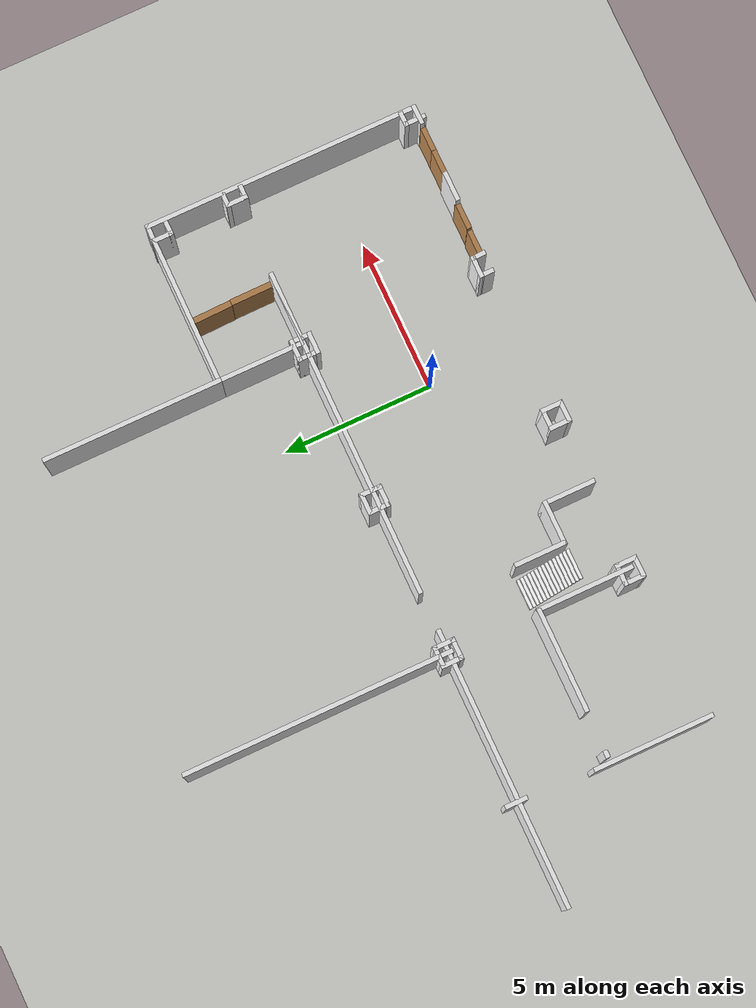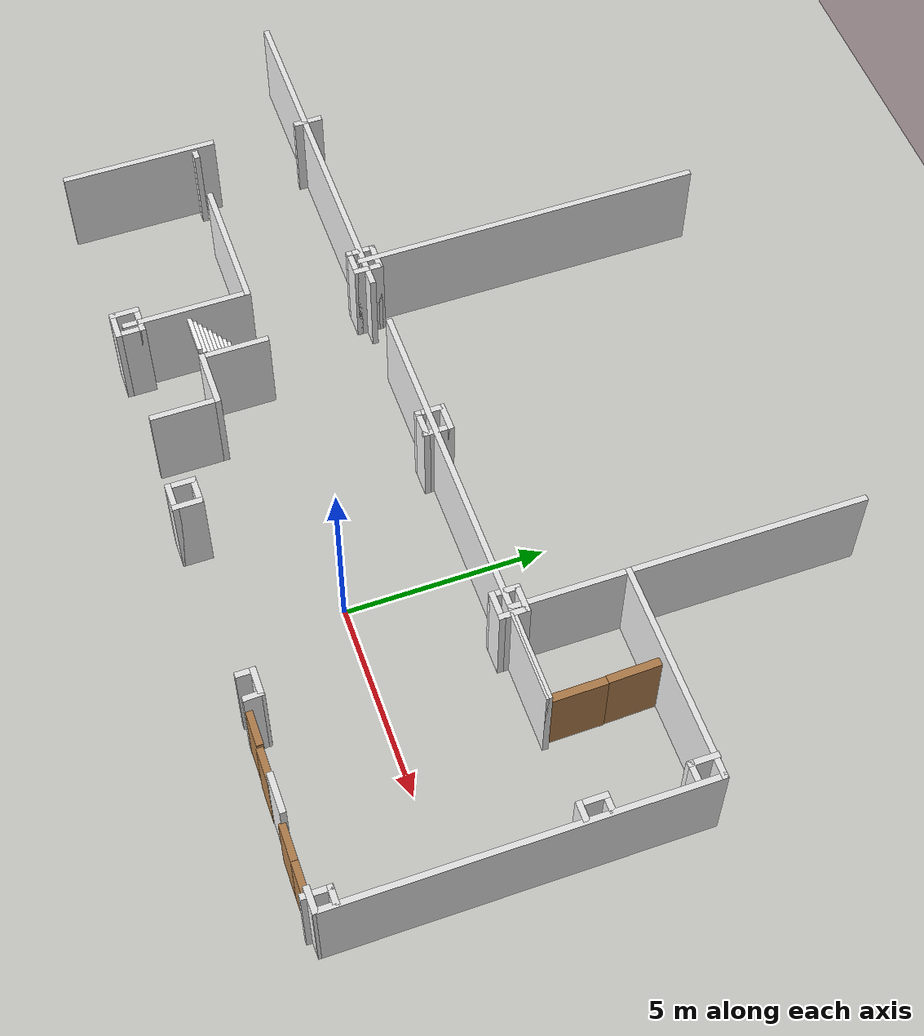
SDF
<sdf version="1.7">
 <world name="default">
  <model name="ground_plane">
   <static>1</static>
   <link name="link">
    <collision name="collision">
     <geometry><plane><normal>0 0 1</normal><size>100 100</size></plane></geometry>
     <surface><friction><ode><mu>100</mu><mu2>50</mu2></ode></friction></surface>
    </collision>
    <visual name="visual">
     <cast_shadows>0</cast_shadows>
     <geometry><plane><normal>0 0 1</normal><size>100 100</size></plane></geometry>
     <material>
      <script><uri>file://media/materials/scripts/gazebo.material</uri><name>Gazebo/CeilingTiled</name></script>
     </material>
    </visual>
   </link>
  </model>
  <model name="Peta_DC">
   <pose>-13.289 4.38092 0 0 -0 0</pose>
   <link name="Door_0">
    <collision name="Door_0_Collision">
     <geometry><box><size>0.9 0.17 2</size></box></geometry>
     <pose>0 0 1 0 -0 0</pose>
    </collision>
    <visual name="Door_0_Visual">
     <pose>0 0 1 0 -0 0</pose>
     <geometry><box><size>0.9 0.17 2</size></box></geometry>
     <material>
      <script><uri>file://media/materials/scripts/gazebo.material</uri><name>Gazebo/Wood</name></script>
     </material>
    </visual>
    <pose>16.4699 -7.39187 0 0 -0 0</pose>
   </link>
   <link name="Door_1">
    <collision name="Door_1_Collision">
     <geometry><box><size>0.9 0.17 2</size></box></geometry>
     <pose>0 0 1 0 -0 0</pose>
    </collision>
    <visual name="Door_1_Visual">
     <pose>0 0 1 0 -0 0</pose>
     <geometry><box><size>0.9 0.17 2</size></box></geometry>
     <material>
      <script><uri>file://media/materials/scripts/gazebo.material</uri><name>Gazebo/Wood</name></script>
     </material>
    </visual>
    <pose>17.4275 -7.41847 0 0 -0 0</pose>
   </link>
   <link name="Door_2">
    <collision name="Door_2_Collision">
     <geometry><box><size>0.9 0.17 2</size></box></geometry>
     <pose>0 0 1 0 -0 0</pose>
    </collision>
    <visual name="Door_2_Visual">
     <pose>0 0 1 0 -0 0</pose>
     <geometry><box><size>0.9 0.17 2</size></box></geometry>
     <material>
      <script><uri>file://media/materials/scripts/gazebo.material</uri><name>Gazebo/Wood</name></script>
     </material>
    </visual>
    <pose>19.2629 -7.47167 0 0 -0 0</pose>
   </link>
   <link name="Door_3">
    <collision name="Door_3_Collision">
     <geometry><box><size>0.9 0.17 2</size></box></geometry>
     <pose>0 0 1 0 -0 0</pose>
    </collision>
    <visual name="Door_3_Visual">
     <pose>0 0 1 0 -0 0</pose>
     <geometry><box><size>0.9 0.17 2</size></box></geometry>
     <material>
      <script><uri>file://media/materials/scripts/gazebo.material</uri><name>Gazebo/Wood</name></script>
     </material>
    </visual>
    <pose>20.1673 -7.47167 0 0 -0 0</pose>
   </link>
   <link name="Door_6">
    <collision name="Door_6_Collision">
     <geometry><box><size>1.37986 0.2 2</size></box></geometry>
     <pose>0 0 1 0 -0 0</pose>
    </collision>
    <visual name="Door_6_Visual">
     <pose>0 0 1 0 -0 0</pose>
     <geometry><box><size>1.37986 0.2 2</size></box></geometry>
     <material>
      <script><uri>file://media/materials/scripts/gazebo.material</uri><name>Gazebo/Wood</name></script>
     </material>
    </visual>
    <pose>17.9508 -0.39061 0 0 -0 1.57715</pose>
   </link>
   <link name="Door_7">
    <collision name="Door_7_Collision">
     <geometry><box><size>1.307 0.2 2</size></box></geometry>
     <pose>0 0 1 0 -0 0</pose>
    </collision>
    <visual name="Door_7_Visual">
     <pose>0 0 1 0 -0 0</pose>
     <geometry><box><size>1.307 0.2 2</size></box></geometry>
     <material>
      <script><uri>file://media/materials/scripts/gazebo.material</uri><name>Gazebo/Wood</name></script>
     </material>
    </visual>
    <pose>17.9174 0.952902 0 0 -0 1.59482</pose>
   </link>
   <link name="Stairs_1">
    <visual name="Stairs_1_Visual_0">
     <pose>6.0533 -4.25799 0.083333 0 -0 0</pose>
     <geometry><box><size>1 0.109737 0.166667</size></box></geometry>
     <material>
      <script><uri>file://media/materials/scripts/gazebo.material</uri><name>Gazebo/Steps</name></script>
      <ambient>1 1 1 1</ambient>
     </material>
     <meta><layer>0</layer></meta>
    </visual>
    <collision name="Stairs_1_Collision_0">
     <geometry><box><size>1 0.109737 0.166667</size></box></geometry>
     <pose>6.0533 -4.25799 0.083333 0 -0 0</pose>
    </collision>
    <visual name="Stairs_1_Visual_1">
     <pose>6.0533 -4.36773 0.25 0 -0 0</pose>
     <geometry><box><size>1 0.109737 0.166667</size></box></geometry>
     <material>
      <script><uri>file://media/materials/scripts/gazebo.material</uri><name>Gazebo/Steps</name></script>
      <ambient>1 1 1 1</ambient>
     </material>
     <meta><layer>0</layer></meta>
    </visual>
    <collision name="Stairs_1_Collision_1">
     <geometry><box><size>1 0.109737 0.166667</size></box></geometry>
     <pose>6.0533 -4.36773 0.25 0 -0 0</pose>
    </collision>
    <visual name="Stairs_1_Visual_2">
     <pose>6.0533 -4.47746 0.416667 0 -0 0</pose>
     <geometry><box><size>1 0.109737 0.166667</size></box></geometry>
     <material>
      <script><uri>file://media/materials/scripts/gazebo.material</uri><name>Gazebo/Steps</name></script>
      <ambient>1 1 1 1</ambient>
     </material>
     <meta><layer>0</layer></meta>
    </visual>
    <collision name="Stairs_1_Collision_2">
     <geometry><box><size>1 0.109737 0.166667</size></box></geometry>
     <pose>6.0533 -4.47746 0.416667 0 -0 0</pose>
    </collision>
    <visual name="Stairs_1_Visual_3">
     <pose>6.0533 -4.5872 0.583333 0 -0 0</pose>
     <geometry><box><size>1 0.109737 0.166667</size></box></geometry>
     <material>
      <script><uri>file://media/materials/scripts/gazebo.material</uri><name>Gazebo/Steps</name></script>
      <ambient>1 1 1 1</ambient>
     </material>
     <meta><layer>0</layer></meta>
    </visual>
    <collision name="Stairs_1_Collision_3">
     <geometry><box><size>1 0.109737 0.166667</size></box></geometry>
     <pose>6.0533 -4.5872 0.583333 0 -0 0</pose>
    </collision>
    <visual name="Stairs_1_Visual_4">
     <pose>6.0533 -4.69694 0.75 0 -0 0</pose>
     <geometry><box><size>1 0.109737 0.166667</size></box></geometry>
     <material>
      <script><uri>file://media/materials/scripts/gazebo.material</uri><name>Gazebo/Steps</name></script>
      <ambient>1 1 1 1</ambient>
     </material>
     <meta><layer>0</layer></meta>
    </visual>
    <collision name="Stairs_1_Collision_4">
     <geometry><box><size>1 0.109737 0.166667</size></box></geometry>
     <pose>6.0533 -4.69694 0.75 0 -0 0</pose>
    </collision>
    <visual name="Stairs_1_Visual_5">
     <pose>6.0533 -4.80668 0.916667 0 -0 0</pose>
     <geometry><box><size>1 0.109737 0.166667</size></box></geometry>
     <material>
      <script><uri>file://media/materials/scripts/gazebo.material</uri><name>Gazebo/Steps</name></script>
      <ambient>1 1 1 1</ambient>
     </material>
     <meta><layer>0</layer></meta>
    </visual>
    <collision name="Stairs_1_Collision_5">
     <geometry><box><size>1 0.109737 0.166667</size></box></geometry>
     <pose>6.0533 -4.80668 0.916667 0 -0 0</pose>
    </collision>
    <visual name="Stairs_1_Visual_6">
     <pose>6.0533 -4.91641 1.08333 0 -0 0</pose>
     <geometry><box><size>1 0.109737 0.166667</size></box></geometry>
     <material>
      <script><uri>file://media/materials/scripts/gazebo.material</uri><name>Gazebo/Steps</name></script>
      <ambient>1 1 1 1</ambient>
     </material>
     <meta><layer>0</layer></meta>
    </visual>
    <collision name="Stairs_1_Collision_6">
     <geometry><box><size>1 0.109737 0.166667</size></box></geometry>
     <pose>6.0533 -4.91641 1.08333 0 -0 0</pose>
    </collision>
    <visual name="Stairs_1_Visual_7">
     <pose>6.0533 -5.02615 1.25 0 -0 0</pose>
     <geometry><box><size>1 0.109737 0.166667</size></box></geometry>
     <material>
      <script><uri>file://media/materials/scripts/gazebo.material</uri><name>Gazebo/Steps</name></script>
      <ambient>1 1 1 1</ambient>
     </material>
     <meta><layer>0</layer></meta>
    </visual>
    <collision name="Stairs_1_Collision_7">
     <geometry><box><size>1 0.109737 0.166667</size></box></geometry>
     <pose>6.0533 -5.02615 1.25 0 -0 0</pose>
    </collision>
    <visual name="Stairs_1_Visual_8">
     <pose>6.0533 -5.13589 1.41667 0 -0 0</pose>
     <geometry><box><size>1 0.109737 0.166667</size></box></geometry>
     <material>
      <script><uri>file://media/materials/scripts/gazebo.material</uri><name>Gazebo/Steps</name></script>
      <ambient>1 1 1 1</ambient>
     </material>
     <meta><layer>0</layer></meta>
    </visual>
    <collision name="Stairs_1_Collision_8">
     <geometry><box><size>1 0.109737 0.166667</size></box></geometry>
     <pose>6.0533 -5.13589 1.41667 0 -0 0</pose>
    </collision>
    <visual name="Stairs_1_Visual_9">
     <pose>6.0533 -5.24562 1.58333 0 -0 0</pose>
     <geometry><box><size>1 0.109737 0.166667</size></box></geometry>
     <material>
      <script><uri>file://media/materials/scripts/gazebo.material</uri><name>Gazebo/Steps</name></script>
      <ambient>1 1 1 1</ambient>
     </material>
     <meta><layer>0</layer></meta>
    </visual>
    <collision name="Stairs_1_Collision_9">
     <geometry><box><size>1 0.109737 0.166667</size></box></geometry>
     <pose>6.0533 -5.24562 1.58333 0 -0 0</pose>
    </collision>
    <visual name="Stairs_1_Visual_10">
     <pose>6.0533 -5.35536 1.75 0 -0 0</pose>
     <geometry><box><size>1 0.109737 0.166667</size></box></geometry>
     <material>
      <script><uri>file://media/materials/scripts/gazebo.material</uri><name>Gazebo/Steps</name></script>
      <ambient>1 1 1 1</ambient>
     </material>
     <meta><layer>0</layer></meta>
    </visual>
    <collision name="Stairs_1_Collision_10">
     <geometry><box><size>1 0.109737 0.166667</size></box></geometry>
     <pose>6.0533 -5.35536 1.75 0 -0 0</pose>
    </collision>
    <visual name="Stairs_1_Visual_11">
     <pose>6.0533 -5.4651 1.91667 0 -0 0</pose>
     <geometry><box><size>1 0.109737 0.166667</size></box></geometry>
     <material>
      <script><uri>file://media/materials/scripts/gazebo.material</uri><name>Gazebo/Steps</name></script>
      <ambient>1 1 1 1</ambient>
     </material>
     <meta><layer>0</layer></meta>
    </visual>
    <collision name="Stairs_1_Collision_11">
     <geometry><box><size>1 0.109737 0.166667</size></box></geometry>
     <pose>6.0533 -5.4651 1.91667 0 -0 0</pose>
    </collision>
    <visual name="Stairs_1_Visual_12">
     <pose>6.0533 -5.57484 2.08333 0 -0 0</pose>
     <geometry><box><size>1 0.109737 0.166667</size></box></geometry>
     <material>
      <script><uri>file://media/materials/scripts/gazebo.material</uri><name>Gazebo/Steps</name></script>
      <ambient>1 1 1 1</ambient>
     </material>
     <meta><layer>0</layer></meta>
    </visual>
    <collision name="Stairs_1_Collision_12">
     <geometry><box><size>1 0.109737 0.166667</size></box></geometry>
     <pose>6.0533 -5.57484 2.08333 0 -0 0</pose>
    </collision>
    <visual name="Stairs_1_Visual_13">
     <pose>6.0533 -5.68457 2.25 0 -0 0</pose>
     <geometry><box><size>1 0.109737 0.166667</size></box></geometry>
     <material>
      <script><uri>file://media/materials/scripts/gazebo.material</uri><name>Gazebo/Steps</name></script>
      <ambient>1 1 1 1</ambient>
     </material>
     <meta><layer>0</layer></meta>
    </visual>
    <collision name="Stairs_1_Collision_13">
     <geometry><box><size>1 0.109737 0.166667</size></box></geometry>
     <pose>6.0533 -5.68457 2.25 0 -0 0</pose>
    </collision>
    <visual name="Stairs_1_Visual_14">
     <pose>6.0533 -5.79431 2.41667 0 -0 0</pose>
     <geometry><box><size>1 0.109737 0.166667</size></box></geometry>
     <material>
      <script><uri>file://media/materials/scripts/gazebo.material</uri><name>Gazebo/Steps</name></script>
      <ambient>1 1 1 1</ambient>
     </material>
     <meta><layer>0</layer></meta>
    </visual>
    <collision name="Stairs_1_Collision_14">
     <geometry><box><size>1 0.109737 0.166667</size></box></geometry>
     <pose>6.0533 -5.79431 2.41667 0 -0 0</pose>
    </collision>
   </link>
   <link name="Wall_100">
    <collision name="Wall_100_Collision">
     <geometry><box><size>0.75 0.15 2.5</size></box></geometry>
     <pose>0 0 1.25 0 -0 0</pose>
    </collision>
    <visual name="Wall_100_Visual">
     <pose>0 0 1.25 0 -0 0</pose>
     <geometry><box><size>0.75 0.15 2.5</size></box></geometry>
     <material>
      <script><uri>file://media/materials/scripts/gazebo.material</uri><name>Gazebo/White</name></script>
      <ambient>1 1 1 1</ambient>
     </material>
     <meta><layer>0</layer></meta>
    </visual>
    <pose>15.6263 -1.46404 0 0 -0 3.14159</pose>
   </link>
   <link name="Wall_101">
    <collision name="Wall_101_Collision">
     <geometry><box><size>0.75 0.15 2.5</size></box></geometry>
     <pose>0 0 1.25 0 -0 0</pose>
    </collision>
    <visual name="Wall_101_Visual">
     <pose>0 0 1.25 0 -0 0</pose>
     <geometry><box><size>0.75 0.15 2.5</size></box></geometry>
     <material>
      <script><uri>file://media/materials/scripts/gazebo.material</uri><name>Gazebo/White</name></script>
      <ambient>1 1 1 1</ambient>
     </material>
     <meta><layer>0</layer></meta>
    </visual>
    <pose>15.3263 -1.16404 0 0 -0 1.5708</pose>
   </link>
   <link name="Wall_103">
    <collision name="Wall_103_Collision">
     <geometry><box><size>0.75 0.15 2.5</size></box></geometry>
     <pose>0 0 1.25 0 -0 0</pose>
    </collision>
    <visual name="Wall_103_Visual">
     <pose>0 0 1.25 0 -0 0</pose>
     <geometry><box><size>0.75 0.15 2.5</size></box></geometry>
     <material>
      <script><uri>file://media/materials/scripts/gazebo.material</uri><name>Gazebo/White</name></script>
      <ambient>1 1 1 1</ambient>
     </material>
     <meta><layer>0</layer></meta>
    </visual>
    <pose>20.6163 1.39596 0 0 -0 -1.5708</pose>
   </link>
   <link name="Wall_104">
    <collision name="Wall_104_Collision">
     <geometry><box><size>0.5 0.15 2.5</size></box></geometry>
     <pose>0 0 1.25 0 -0 0</pose>
    </collision>
    <visual name="Wall_104_Visual">
     <pose>0 0 1.25 0 -0 0</pose>
     <geometry><box><size>0.5 0.15 2.5</size></box></geometry>
     <material>
      <script><uri>file://media/materials/scripts/gazebo.material</uri><name>Gazebo/White</name></script>
      <ambient>1 1 1 1</ambient>
     </material>
     <meta><layer>0</layer></meta>
    </visual>
    <pose>20.7913 1.09596 0 0 -0 0</pose>
   </link>
   <link name="Wall_106">
    <collision name="Wall_106_Collision">
     <geometry><box><size>0.5 0.15 2.5</size></box></geometry>
     <pose>0 0 1.25 0 -0 0</pose>
    </collision>
    <visual name="Wall_106_Visual">
     <pose>0 0 1.25 0 -0 0</pose>
     <geometry><box><size>0.5 0.15 2.5</size></box></geometry>
     <material>
      <script><uri>file://media/materials/scripts/gazebo.material</uri><name>Gazebo/White</name></script>
      <ambient>1 1 1 1</ambient>
     </material>
     <meta><layer>0</layer></meta>
    </visual>
    <pose>20.8713 -0.87404 0 0 -0 3.14159</pose>
   </link>
   <link name="Wall_107">
    <collision name="Wall_107_Collision">
     <geometry><box><size>0.75 0.15 2.5</size></box></geometry>
     <pose>0 0 1.25 0 -0 0</pose>
    </collision>
    <visual name="Wall_107_Visual">
     <pose>0 0 1.25 0 -0 0</pose>
     <geometry><box><size>0.75 0.15 2.5</size></box></geometry>
     <material>
      <script><uri>file://media/materials/scripts/gazebo.material</uri><name>Gazebo/White</name></script>
      <ambient>1 1 1 1</ambient>
     </material>
     <meta><layer>0</layer></meta>
    </visual>
    <pose>20.6963 -1.17404 0 0 -0 -1.5708</pose>
   </link>
   <link name="Wall_108">
    <collision name="Wall_108_Collision">
     <geometry><box><size>0.5 0.15 2.5</size></box></geometry>
     <pose>0 0 1.25 0 -0 0</pose>
    </collision>
    <visual name="Wall_108_Visual">
     <pose>0 0 1.25 0 -0 0</pose>
     <geometry><box><size>0.5 0.15 2.5</size></box></geometry>
     <material>
      <script><uri>file://media/materials/scripts/gazebo.material</uri><name>Gazebo/White</name></script>
      <ambient>1 1 1 1</ambient>
     </material>
     <meta><layer>0</layer></meta>
    </visual>
    <pose>20.8713 -1.47404 0 0 -0 0</pose>
   </link>
   <link name="Wall_11">
    <collision name="Wall_11_Collision">
     <geometry><box><size>0.66993 0.15 2.5</size></box></geometry>
     <pose>0 0 1.25 0 -0 0</pose>
    </collision>
    <visual name="Wall_11_Visual">
     <pose>0 0 1.25 0 -0 0</pose>
     <geometry><box><size>0.66993 0.15 2.5</size></box></geometry>
     <material>
      <script><uri>file://media/materials/scripts/gazebo.material</uri><name>Gazebo/White</name></script>
      <ambient>1 1 1 1</ambient>
     </material>
     <meta><layer>0</layer></meta>
    </visual>
    <pose>20.8528 -7.43908 0 0 -0 0.023062</pose>
   </link>
   <link name="Wall_110">
    <collision name="Wall_110_Collision">
     <geometry><box><size>0.5 0.15 2.5</size></box></geometry>
     <pose>0 0 1.25 0 -0 0</pose>
    </collision>
    <visual name="Wall_110_Visual">
     <pose>0 0 1.25 0 -0 0</pose>
     <geometry><box><size>0.5 0.15 2.5</size></box></geometry>
     <material>
      <script><uri>file://media/materials/scripts/gazebo.material</uri><name>Gazebo/White</name></script>
      <ambient>1 1 1 1</ambient>
     </material>
     <meta><layer>0</layer></meta>
    </visual>
    <pose>20.9013 -6.97404 0 0 -0 3.14159</pose>
   </link>
   <link name="Wall_111">
    <collision name="Wall_111_Collision">
     <geometry><box><size>0.75 0.15 2.5</size></box></geometry>
     <pose>0 0 1.25 0 -0 0</pose>
    </collision>
    <visual name="Wall_111_Visual">
     <pose>0 0 1.25 0 -0 0</pose>
     <geometry><box><size>0.75 0.15 2.5</size></box></geometry>
     <material>
      <script><uri>file://media/materials/scripts/gazebo.material</uri><name>Gazebo/White</name></script>
      <ambient>1 1 1 1</ambient>
     </material>
     <meta><layer>0</layer></meta>
    </visual>
    <pose>20.7263 -7.27404 0 0 -0 -1.5708</pose>
   </link>
   <link name="Wall_113">
    <collision name="Wall_113_Collision">
     <geometry><box><size>0.5 0.15 2.5</size></box></geometry>
     <pose>0 0 1.25 0 -0 0</pose>
    </collision>
    <visual name="Wall_113_Visual">
     <pose>0 0 1.25 0 -0 0</pose>
     <geometry><box><size>0.5 0.15 2.5</size></box></geometry>
     <material>
      <script><uri>file://media/materials/scripts/gazebo.material</uri><name>Gazebo/White</name></script>
      <ambient>1 1 1 1</ambient>
     </material>
     <meta><layer>0</layer></meta>
    </visual>
    <pose>15.3763 -7.22904 0 0 -0 1.5708</pose>
   </link>
   <link name="Wall_114">
    <collision name="Wall_114_Collision">
     <geometry><box><size>0.75 0.15 2.5</size></box></geometry>
     <pose>0 0 1.25 0 -0 0</pose>
    </collision>
    <visual name="Wall_114_Visual">
     <pose>0 0 1.25 0 -0 0</pose>
     <geometry><box><size>0.75 0.15 2.5</size></box></geometry>
     <material>
      <script><uri>file://media/materials/scripts/gazebo.material</uri><name>Gazebo/White</name></script>
      <ambient>1 1 1 1</ambient>
     </material>
     <meta><layer>0</layer></meta>
    </visual>
    <pose>15.6763 -7.05404 0 0 -0 0</pose>
   </link>
   <link name="Wall_115">
    <collision name="Wall_115_Collision">
     <geometry><box><size>0.504245 0.15 2.5</size></box></geometry>
     <pose>0 0 1.25 0 -0 0</pose>
    </collision>
    <visual name="Wall_115_Visual">
     <pose>0 0 1.25 0 -0 0</pose>
     <geometry><box><size>0.504245 0.15 2.5</size></box></geometry>
     <material>
      <script><uri>file://media/materials/scripts/gazebo.material</uri><name>Gazebo/White</name></script>
      <ambient>1 1 1 1</ambient>
     </material>
     <meta><layer>0</layer></meta>
    </visual>
    <pose>15.9809 -7.2311 0 0 -0 -1.54451</pose>
   </link>
   <link name="Wall_117">
    <collision name="Wall_117_Collision">
     <geometry><box><size>0.75 0.15 2.5</size></box></geometry>
     <pose>0 0 1.25 0 -0 0</pose>
    </collision>
    <visual name="Wall_117_Visual">
     <pose>0 0 1.25 0 -0 0</pose>
     <geometry><box><size>0.75 0.15 2.5</size></box></geometry>
     <material>
      <script><uri>file://media/materials/scripts/gazebo.material</uri><name>Gazebo/White</name></script>
      <ambient>1 1 1 1</ambient>
     </material>
     <meta><layer>0</layer></meta>
    </visual>
    <pose>10.1363 -7.26404 0 0 -0 1.5708</pose>
   </link>
   <link name="Wall_118">
    <collision name="Wall_118_Collision">
     <geometry><box><size>0.75 0.15 2.5</size></box></geometry>
     <pose>0 0 1.25 0 -0 0</pose>
    </collision>
    <visual name="Wall_118_Visual">
     <pose>0 0 1.25 0 -0 0</pose>
     <geometry><box><size>0.75 0.15 2.5</size></box></geometry>
     <material>
      <script><uri>file://media/materials/scripts/gazebo.material</uri><name>Gazebo/White</name></script>
      <ambient>1 1 1 1</ambient>
     </material>
     <meta><layer>0</layer></meta>
    </visual>
    <pose>10.4363 -6.96404 0 0 -0 0</pose>
   </link>
   <link name="Wall_119">
    <collision name="Wall_119_Collision">
     <geometry><box><size>0.75 0.15 2.5</size></box></geometry>
     <pose>0 0 1.25 0 -0 0</pose>
    </collision>
    <visual name="Wall_119_Visual">
     <pose>0 0 1.25 0 -0 0</pose>
     <geometry><box><size>0.75 0.15 2.5</size></box></geometry>
     <material>
      <script><uri>file://media/materials/scripts/gazebo.material</uri><name>Gazebo/White</name></script>
      <ambient>1 1 1 1</ambient>
     </material>
     <meta><layer>0</layer></meta>
    </visual>
    <pose>10.7363 -7.26404 0 0 -0 -1.5708</pose>
   </link>
   <link name="Wall_120">
    <collision name="Wall_120_Collision">
     <geometry><box><size>0.75 0.15 2.5</size></box></geometry>
     <pose>0 0 1.25 0 -0 0</pose>
    </collision>
    <visual name="Wall_120_Visual">
     <pose>0 0 1.25 0 -0 0</pose>
     <geometry><box><size>0.75 0.15 2.5</size></box></geometry>
     <material>
      <script><uri>file://media/materials/scripts/gazebo.material</uri><name>Gazebo/White</name></script>
      <ambient>1 1 1 1</ambient>
     </material>
     <meta><layer>0</layer></meta>
    </visual>
    <pose>10.4363 -7.56404 0 0 -0 3.14159</pose>
   </link>
   <link name="Wall_122">
    <collision name="Wall_122_Collision">
     <geometry><box><size>0.75 0.15 2.5</size></box></geometry>
     <pose>0 0 1.25 0 -0 0</pose>
    </collision>
    <visual name="Wall_122_Visual">
     <pose>0 0 1.25 0 -0 0</pose>
     <geometry><box><size>0.75 0.15 2.5</size></box></geometry>
     <material>
      <script><uri>file://media/materials/scripts/gazebo.material</uri><name>Gazebo/White</name></script>
      <ambient>1 1 1 1</ambient>
     </material>
     <meta><layer>0</layer></meta>
    </visual>
    <pose>5.15629 -6.95404 0 0 -0 0</pose>
   </link>
   <link name="Wall_123">
    <collision name="Wall_123_Collision">
     <geometry><box><size>0.75 0.15 2.5</size></box></geometry>
     <pose>0 0 1.25 0 -0 0</pose>
    </collision>
    <visual name="Wall_123_Visual">
     <pose>0 0 1.25 0 -0 0</pose>
     <geometry><box><size>0.75 0.15 2.5</size></box></geometry>
     <material>
      <script><uri>file://media/materials/scripts/gazebo.material</uri><name>Gazebo/White</name></script>
      <ambient>1 1 1 1</ambient>
     </material>
     <meta><layer>0</layer></meta>
    </visual>
    <pose>5.45629 -7.25404 0 0 -0 -1.5708</pose>
   </link>
   <link name="Wall_124">
    <collision name="Wall_124_Collision">
     <geometry><box><size>0.75 0.15 2.5</size></box></geometry>
     <pose>0 0 1.25 0 -0 0</pose>
    </collision>
    <visual name="Wall_124_Visual">
     <pose>0 0 1.25 0 -0 0</pose>
     <geometry><box><size>0.75 0.15 2.5</size></box></geometry>
     <material>
      <script><uri>file://media/materials/scripts/gazebo.material</uri><name>Gazebo/White</name></script>
      <ambient>1 1 1 1</ambient>
     </material>
     <meta><layer>0</layer></meta>
    </visual>
    <pose>5.15629 -7.55404 0 0 -0 3.14159</pose>
   </link>
   <link name="Wall_125">
    <collision name="Wall_125_Collision">
     <geometry><box><size>0.75 0.15 2.5</size></box></geometry>
     <pose>0 0 1.25 0 -0 0</pose>
    </collision>
    <visual name="Wall_125_Visual">
     <pose>0 0 1.25 0 -0 0</pose>
     <geometry><box><size>0.75 0.15 2.5</size></box></geometry>
     <material>
      <script><uri>file://media/materials/scripts/gazebo.material</uri><name>Gazebo/White</name></script>
      <ambient>1 1 1 1</ambient>
     </material>
     <meta><layer>0</layer></meta>
    </visual>
    <pose>4.85629 -7.25404 0 0 -0 1.5708</pose>
   </link>
   <link name="Wall_13">
    <collision name="Wall_13_Collision">
     <geometry><box><size>3 0.15 2.5</size></box></geometry>
     <pose>0 0 1.25 0 -0 0</pose>
    </collision>
    <visual name="Wall_13_Visual">
     <pose>0 0 1.25 0 -0 0</pose>
     <geometry><box><size>3 0.15 2.5</size></box></geometry>
     <material>
      <script><uri>file://media/materials/scripts/gazebo.material</uri><name>Gazebo/White</name></script>
      <ambient>1 1 1 1</ambient>
     </material>
     <meta><layer>0</layer></meta>
    </visual>
    <pose>15.7627 0.241917 0 0 -0 -1.5708</pose>
   </link>
   <link name="Wall_14">
    <collision name="Wall_14_Collision">
     <geometry><box><size>2.5 0.15 2.5</size></box></geometry>
     <pose>0 0 1.25 0 -0 0</pose>
    </collision>
    <visual name="Wall_14_Visual">
     <pose>0 0 1.25 0 -0 0</pose>
     <geometry><box><size>2.5 0.15 2.5</size></box></geometry>
     <material>
      <script><uri>file://media/materials/scripts/gazebo.material</uri><name>Gazebo/White</name></script>
      <ambient>1 1 1 1</ambient>
     </material>
     <meta><layer>0</layer></meta>
    </visual>
    <pose>16.9377 -1.18308 0 0 -0 0</pose>
   </link>
   <link name="Wall_15">
    <collision name="Wall_15_Collision">
     <geometry><box><size>11 0.15 2.5</size></box></geometry>
     <pose>0 0 1.25 0 -0 0</pose>
    </collision>
    <visual name="Wall_15_Visual">
     <pose>0 0 1.25 0 -0 0</pose>
     <geometry><box><size>11 0.15 2.5</size></box></geometry>
     <material>
      <script><uri>file://media/materials/scripts/gazebo.material</uri><name>Gazebo/White</name></script>
      <ambient>1 1 1 1</ambient>
     </material>
     <meta><layer>0</layer></meta>
    </visual>
    <pose>12.6877 -1.18308 0 0 -0 3.14159</pose>
   </link>
   <link name="Wall_154">
    <collision name="Wall_154_Collision">
     <geometry><box><size>1.75 0.15 2.5</size></box></geometry>
     <pose>0 0 1.25 0 -0 0</pose>
    </collision>
    <visual name="Wall_154_Visual">
     <pose>0 0 1.25 0 -0 0</pose>
     <geometry><box><size>1.75 0.15 2.5</size></box></geometry>
     <material>
      <script><uri>file://media/materials/scripts/gazebo.material</uri><name>Gazebo/White</name></script>
      <ambient>1 1 1 1</ambient>
     </material>
     <meta><layer>0</layer></meta>
    </visual>
    <pose>6.77039 -5.00412 0 0 -0 -1.5708</pose>
   </link>
   <link name="Wall_155">
    <collision name="Wall_155_Collision">
     <geometry><box><size>1.5 0.15 2.5</size></box></geometry>
     <pose>0 0 1.25 0 -0 0</pose>
    </collision>
    <visual name="Wall_155_Visual">
     <pose>0 0 1.25 0 -0 0</pose>
     <geometry><box><size>1.5 0.15 2.5</size></box></geometry>
     <material>
      <script><uri>file://media/materials/scripts/gazebo.material</uri><name>Gazebo/White</name></script>
      <ambient>1 1 1 1</ambient>
     </material>
     <meta><layer>0</layer></meta>
    </visual>
    <pose>7.4454 -5.80412 0 0 -0 0</pose>
   </link>
   <link name="Wall_156">
    <collision name="Wall_156_Collision">
     <geometry><box><size>1.75 0.15 2.5</size></box></geometry>
     <pose>0 0 1.25 0 -0 0</pose>
    </collision>
    <visual name="Wall_156_Visual">
     <pose>0 0 1.25 0 -0 0</pose>
     <geometry><box><size>1.75 0.15 2.5</size></box></geometry>
     <material>
      <script><uri>file://media/materials/scripts/gazebo.material</uri><name>Gazebo/White</name></script>
      <ambient>1 1 1 1</ambient>
     </material>
     <meta><layer>0</layer></meta>
    </visual>
    <pose>8.12039 -6.60412 0 0 -0 -1.5708</pose>
   </link>
   <link name="Wall_17">
    <collision name="Wall_17_Collision">
     <geometry><box><size>9.25 0.15 2.5</size></box></geometry>
     <pose>0 0 1.25 0 -0 0</pose>
    </collision>
    <visual name="Wall_17_Visual">
     <pose>0 0 1.25 0 -0 0</pose>
     <geometry><box><size>9.25 0.15 2.5</size></box></geometry>
     <material>
      <script><uri>file://media/materials/scripts/gazebo.material</uri><name>Gazebo/White</name></script>
      <ambient>1 1 1 1</ambient>
     </material>
     <meta><layer>0</layer></meta>
    </visual>
    <pose>1.35959 -1.19403 0 0 -0 3.14159</pose>
   </link>
   <link name="Wall_48">
    <collision name="Wall_48_Collision">
     <geometry><box><size>9 0.15 2.5</size></box></geometry>
     <pose>0 0 1.25 0 -0 0</pose>
    </collision>
    <visual name="Wall_48_Visual">
     <pose>0 0 1.25 0 -0 0</pose>
     <geometry><box><size>9 0.15 2.5</size></box></geometry>
     <material>
      <script><uri>file://media/materials/scripts/gazebo.material</uri><name>Gazebo/White</name></script>
      <ambient>1 1 1 1</ambient>
     </material>
     <meta><layer>0</layer></meta>
    </visual>
    <pose>5.21798 3.15904 0 0 -0 -1.5708</pose>
   </link>
   <link name="Wall_5">
    <collision name="Wall_5_Collision">
     <geometry><box><size>6 0.15 2.5</size></box></geometry>
     <pose>0 0 1.25 0 -0 0</pose>
    </collision>
    <visual name="Wall_5_Visual">
     <pose>0 0 1.25 0 -0 0</pose>
     <geometry><box><size>6 0.15 2.5</size></box></geometry>
     <material>
      <script><uri>file://media/materials/scripts/gazebo.material</uri><name>Gazebo/White</name></script>
      <ambient>1 1 1 1</ambient>
     </material>
     <meta><layer>0</layer></meta>
    </visual>
    <pose>15.7627 4.59192 0 0 -0 -1.5708</pose>
   </link>
   <link name="Wall_57">
    <collision name="Wall_57_Collision">
     <geometry><box><size>4 0.15 2.5</size></box></geometry>
     <pose>0 0 1.25 0 -0 0</pose>
    </collision>
    <visual name="Wall_57_Visual">
     <pose>0 0 1.25 0 -0 0</pose>
     <geometry><box><size>4 0.15 2.5</size></box></geometry>
     <material>
      <script><uri>file://media/materials/scripts/gazebo.material</uri><name>Gazebo/White</name></script>
      <ambient>1 1 1 1</ambient>
     </material>
     <meta><layer>0</layer></meta>
    </visual>
    <pose>0.156079 -5.64604 0 0 -0 -1.5708</pose>
   </link>
   <link name="Wall_59">
    <collision name="Wall_59_Collision">
     <geometry><box><size>3.5 0.15 2.5</size></box></geometry>
     <pose>0 0 1.25 0 -0 0</pose>
    </collision>
    <visual name="Wall_59_Visual">
     <pose>0 0 1.25 0 -0 0</pose>
     <geometry><box><size>3.5 0.15 2.5</size></box></geometry>
     <material>
      <script><uri>file://media/materials/scripts/gazebo.material</uri><name>Gazebo/White</name></script>
      <ambient>1 1 1 1</ambient>
     </material>
     <meta><layer>0</layer></meta>
    </visual>
    <pose>3.56796 -4.22645 0 0 -0 0</pose>
   </link>
   <link name="Wall_6">
    <collision name="Wall_6_Collision">
     <geometry><box><size>5.5 0.15 2.5</size></box></geometry>
     <pose>0 0 1.25 0 -0 0</pose>
    </collision>
    <visual name="Wall_6_Visual">
     <pose>0 0 1.25 0 -0 0</pose>
     <geometry><box><size>5.5 0.15 2.5</size></box></geometry>
     <material>
      <script><uri>file://media/materials/scripts/gazebo.material</uri><name>Gazebo/White</name></script>
      <ambient>1 1 1 1</ambient>
     </material>
     <meta><layer>0</layer></meta>
    </visual>
    <pose>18.4377 1.66692 0 0 -0 0</pose>
   </link>
   <link name="Wall_60">
    <collision name="Wall_60_Collision">
     <geometry><box><size>3.25 0.15 2.5</size></box></geometry>
     <pose>0 0 1.25 0 -0 0</pose>
    </collision>
    <visual name="Wall_60_Visual">
     <pose>0 0 1.25 0 -0 0</pose>
     <geometry><box><size>3.25 0.15 2.5</size></box></geometry>
     <material>
      <script><uri>file://media/materials/scripts/gazebo.material</uri><name>Gazebo/White</name></script>
      <ambient>1 1 1 1</ambient>
     </material>
     <meta><layer>0</layer></meta>
    </visual>
    <pose>5.24296 -5.77645 0 0 -0 -1.5708</pose>
   </link>
   <link name="Wall_62">
    <collision name="Wall_62_Collision">
     <geometry><box><size>0.25 0.15 2.5</size></box></geometry>
     <pose>0 0 1.25 0 -0 0</pose>
    </collision>
    <visual name="Wall_62_Visual">
     <pose>0 0 1.25 0 -0 0</pose>
     <geometry><box><size>0.25 0.15 2.5</size></box></geometry>
     <material>
      <script><uri>file://media/materials/scripts/gazebo.material</uri><name>Gazebo/White</name></script>
      <ambient>1 1 1 1</ambient>
     </material>
     <meta><layer>0</layer></meta>
    </visual>
    <pose>0.433148 -4.19985 0 0 -0 3.14159</pose>
   </link>
   <link name="Wall_7">
    <collision name="Wall_7_Collision">
     <geometry><box><size>9.25 0.15 2.5</size></box></geometry>
     <pose>0 0 1.25 0 -0 0</pose>
    </collision>
    <visual name="Wall_7_Visual">
     <pose>0 0 1.25 0 -0 0</pose>
     <geometry><box><size>9.25 0.15 2.5</size></box></geometry>
     <material>
      <script><uri>file://media/materials/scripts/gazebo.material</uri><name>Gazebo/White</name></script>
      <ambient>1 1 1 1</ambient>
     </material>
     <meta><layer>0</layer></meta>
    </visual>
    <pose>21.1127 -2.88308 0 0 -0 -1.5708</pose>
   </link>
   <link name="Wall_84">
    <collision name="Wall_84_Collision">
     <geometry><box><size>0.75 0.15 2.5</size></box></geometry>
     <pose>0 0 1.25 0 -0 0</pose>
    </collision>
    <visual name="Wall_84_Visual">
     <pose>0 0 1.25 0 -0 0</pose>
     <geometry><box><size>0.75 0.15 2.5</size></box></geometry>
     <material>
      <script><uri>file://media/materials/scripts/gazebo.material</uri><name>Gazebo/White</name></script>
      <ambient>1 1 1 1</ambient>
     </material>
     <meta><layer>0</layer></meta>
    </visual>
    <pose>0.266291 -1.11404 0 0 -0 -1.5708</pose>
   </link>
   <link name="Wall_88">
    <collision name="Wall_88_Collision">
     <geometry><box><size>0.75 0.15 2.5</size></box></geometry>
     <pose>0 0 1.25 0 -0 0</pose>
    </collision>
    <visual name="Wall_88_Visual">
     <pose>0 0 1.25 0 -0 0</pose>
     <geometry><box><size>0.75 0.15 2.5</size></box></geometry>
     <material>
      <script><uri>file://media/materials/scripts/gazebo.material</uri><name>Gazebo/White</name></script>
      <ambient>1 1 1 1</ambient>
     </material>
     <meta><layer>0</layer></meta>
    </visual>
    <pose>5.20629 -0.86404 0 0 -0 0</pose>
   </link>
   <link name="Wall_89">
    <collision name="Wall_89_Collision">
     <geometry><box><size>0.75 0.15 2.5</size></box></geometry>
     <pose>0 0 1.25 0 -0 0</pose>
    </collision>
    <visual name="Wall_89_Visual">
     <pose>0 0 1.25 0 -0 0</pose>
     <geometry><box><size>0.75 0.15 2.5</size></box></geometry>
     <material>
      <script><uri>file://media/materials/scripts/gazebo.material</uri><name>Gazebo/White</name></script>
      <ambient>1 1 1 1</ambient>
     </material>
     <meta><layer>0</layer></meta>
    </visual>
    <pose>5.50629 -1.16404 0 0 -0 -1.5708</pose>
   </link>
   <link name="Wall_9">
    <collision name="Wall_9_Collision">
     <geometry><box><size>1 0.15 2.5</size></box></geometry>
     <pose>0 0 1.25 0 -0 0</pose>
    </collision>
    <visual name="Wall_9_Visual">
     <pose>0 0 1.25 0 -0 0</pose>
     <geometry><box><size>1 0.15 2.5</size></box></geometry>
     <material>
      <script><uri>file://media/materials/scripts/gazebo.material</uri><name>Gazebo/White</name></script>
      <ambient>1 1 1 1</ambient>
     </material>
     <meta><layer>0</layer></meta>
    </visual>
    <pose>18.3313 -7.41847 0 0 -0 0</pose>
   </link>
   <link name="Wall_90">
    <collision name="Wall_90_Collision">
     <geometry><box><size>0.75 0.15 2.5</size></box></geometry>
     <pose>0 0 1.25 0 -0 0</pose>
    </collision>
    <visual name="Wall_90_Visual">
     <pose>0 0 1.25 0 -0 0</pose>
     <geometry><box><size>0.75 0.15 2.5</size></box></geometry>
     <material>
      <script><uri>file://media/materials/scripts/gazebo.material</uri><name>Gazebo/White</name></script>
      <ambient>1 1 1 1</ambient>
     </material>
     <meta><layer>0</layer></meta>
    </visual>
    <pose>5.20629 -1.46404 0 0 -0 3.14159</pose>
   </link>
   <link name="Wall_91">
    <collision name="Wall_91_Collision">
     <geometry><box><size>0.75 0.15 2.5</size></box></geometry>
     <pose>0 0 1.25 0 -0 0</pose>
    </collision>
    <visual name="Wall_91_Visual">
     <pose>0 0 1.25 0 -0 0</pose>
     <geometry><box><size>0.75 0.15 2.5</size></box></geometry>
     <material>
      <script><uri>file://media/materials/scripts/gazebo.material</uri><name>Gazebo/White</name></script>
      <ambient>1 1 1 1</ambient>
     </material>
     <meta><layer>0</layer></meta>
    </visual>
    <pose>4.90629 -1.16404 0 0 -0 1.5708</pose>
   </link>
   <link name="Wall_93">
    <collision name="Wall_93_Collision">
     <geometry><box><size>0.75 0.15 2.5</size></box></geometry>
     <pose>0 0 1.25 0 -0 0</pose>
    </collision>
    <visual name="Wall_93_Visual">
     <pose>0 0 1.25 0 -0 0</pose>
     <geometry><box><size>0.75 0.15 2.5</size></box></geometry>
     <material>
      <script><uri>file://media/materials/scripts/gazebo.material</uri><name>Gazebo/White</name></script>
      <ambient>1 1 1 1</ambient>
     </material>
     <meta><layer>0</layer></meta>
    </visual>
    <pose>10.3963 -0.82404 0 0 -0 0</pose>
   </link>
   <link name="Wall_94">
    <collision name="Wall_94_Collision">
     <geometry><box><size>0.75 0.15 2.5</size></box></geometry>
     <pose>0 0 1.25 0 -0 0</pose>
    </collision>
    <visual name="Wall_94_Visual">
     <pose>0 0 1.25 0 -0 0</pose>
     <geometry><box><size>0.75 0.15 2.5</size></box></geometry>
     <material>
      <script><uri>file://media/materials/scripts/gazebo.material</uri><name>Gazebo/White</name></script>
      <ambient>1 1 1 1</ambient>
     </material>
     <meta><layer>0</layer></meta>
    </visual>
    <pose>10.6963 -1.12404 0 0 -0 -1.5708</pose>
   </link>
   <link name="Wall_95">
    <collision name="Wall_95_Collision">
     <geometry><box><size>0.75 0.15 2.5</size></box></geometry>
     <pose>0 0 1.25 0 -0 0</pose>
    </collision>
    <visual name="Wall_95_Visual">
     <pose>0 0 1.25 0 -0 0</pose>
     <geometry><box><size>0.75 0.15 2.5</size></box></geometry>
     <material>
      <script><uri>file://media/materials/scripts/gazebo.material</uri><name>Gazebo/White</name></script>
      <ambient>1 1 1 1</ambient>
     </material>
     <meta><layer>0</layer></meta>
    </visual>
    <pose>10.3963 -1.42404 0 0 -0 3.14159</pose>
   </link>
   <link name="Wall_96">
    <collision name="Wall_96_Collision">
     <geometry><box><size>0.75 0.15 2.5</size></box></geometry>
     <pose>0 0 1.25 0 -0 0</pose>
    </collision>
    <visual name="Wall_96_Visual">
     <pose>0 0 1.25 0 -0 0</pose>
     <geometry><box><size>0.75 0.15 2.5</size></box></geometry>
     <material>
      <script><uri>file://media/materials/scripts/gazebo.material</uri><name>Gazebo/White</name></script>
      <ambient>1 1 1 1</ambient>
     </material>
     <meta><layer>0</layer></meta>
    </visual>
    <pose>10.0963 -1.12404 0 0 -0 1.5708</pose>
   </link>
   <link name="Wall_98">
    <collision name="Wall_98_Collision">
     <geometry><box><size>0.75 0.15 2.5</size></box></geometry>
     <pose>0 0 1.25 0 -0 0</pose>
    </collision>
    <visual name="Wall_98_Visual">
     <pose>0 0 1.25 0 -0 0</pose>
     <geometry><box><size>0.75 0.15 2.5</size></box></geometry>
     <material>
      <script><uri>file://media/materials/scripts/gazebo.material</uri><name>Gazebo/White</name></script>
      <ambient>1 1 1 1</ambient>
     </material>
     <meta><layer>0</layer></meta>
    </visual>
    <pose>15.6263 -0.86404 0 0 -0 0</pose>
   </link>
   <link name="Wall_99">
    <collision name="Wall_99_Collision">
     <geometry><box><size>0.75 0.15 2.5</size></box></geometry>
     <pose>0 0 1.25 0 -0 0</pose>
    </collision>
    <visual name="Wall_99_Visual">
     <pose>0 0 1.25 0 -0 0</pose>
     <geometry><box><size>0.75 0.15 2.5</size></box></geometry>
     <material>
      <script><uri>file://media/materials/scripts/gazebo.material</uri><name>Gazebo/White</name></script>
      <ambient>1 1 1 1</ambient>
     </material>
     <meta><layer>0</layer></meta>
    </visual>
    <pose>15.9263 -1.16404 0 0 -0 -1.5708</pose>
   </link>
   <static>1</static>
  </model>
 </world>
</sdf>
